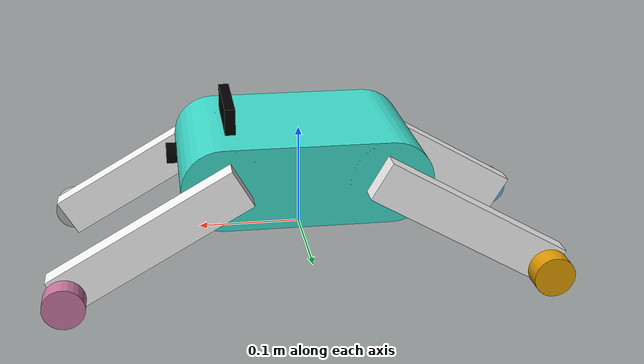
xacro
<?xml version="1.0"?>
<robot name="hitomi_display" xmlns:xacro="https://ros.org/wiki/xacro">
    <xacro:include filename="$(find hitomi_display)/urdf/chassis.urdf.xacro"/>
    <xacro:include filename="$(find hitomi_display)/urdf/legs.urdf.xacro"/>
    <xacro:include filename="$(find hitomi_display)/urdf/wheels.urdf.xacro"/>
    <xacro:include filename="$(find hitomi_display)/urdf/display.urdf.xacro"/>
    <xacro:include filename="$(find hitomi_display)/urdf/camera.urdf.xacro"/>

    <xacro:chassis/>
    <xacro:leg suffix="fl" parent="chassis_link" xyz="0.15 0.09 0.03" rpy="0 0.523 0"/>
    <xacro:leg suffix="fr" parent="chassis_link" xyz="0.15 -0.09 0.03" rpy="0 0.523 0"/>
    <xacro:leg suffix="rl" parent="chassis_link" xyz="-0.15 0.09 0.03" rpy="0 -0.523 0"/>
    <xacro:leg suffix="rr" parent="chassis_link" xyz="-0.15 -0.09 0.03" rpy="0 -0.523 0"/>
    <xacro:wheel suffix="fl" parent="leg_fl" xyz="0.08 0.02 -0.05"/>
    <xacro:wheel suffix="fr" parent="leg_fr" xyz="0.08 -0.02 -0.05"/>
    <xacro:wheel suffix="rl" parent="leg_rl" xyz="-0.08 0.02 -0.05" />
    <xacro:wheel suffix="rr" parent="leg_rr" xyz="-0.08 -0.02 -0.05" />
    <xacro:display xyz="0.07 0 0.12" />
    <xacro:camera/>
    <xacro:include filename="$(find hitomi_display)/urdf/gazebo_plugins.urdf.xacro"/>
</robot>

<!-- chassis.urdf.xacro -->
<robot  xmlns:xacro="http://ros.org/wiki/xacro">
    <xacro:macro name="chassis">
        <link name="base_footprint"/>
        <link name="chassis_link">
            <visual>
                <origin xyz="0 0 0.07" rpy="0 0 0"/>
                <geometry>
                    <mesh filename="package://hitomi_display/meshes/body.dae"/>
                </geometry>
                <material name="true_turquoise">
                    <color rgba="0.251 0.878 0.816 1.0"/>
                </material>
            </visual>
            <collision>
                <origin xyz="0 0 0.07" rpy="0 0 0"/>
                <geometry>
                    <mesh filename="package://hitomi_display/meshes/body.stl"/>
                </geometry>
            </collision>
            <inertial>
                <mass value="3.0" />
                <inertia
                  ixx="0.9" ixy="0.0" ixz="0.0"
                  iyy="0.9" iyz="0.0"
                  izz="0.01"/>
              </inertial>
        </link>

        <joint name="base_joint" type="fixed">
            <parent link="base_footprint"/>
            <child link="chassis_link"/>
        </joint>
    </xacro:macro>
</robot>

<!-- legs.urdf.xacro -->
<robot xmlns:xacro="https://ros.org/wiki/xacro">
    <xacro:macro name="leg" params="suffix parent xyz rpy">
        <link name="leg_${suffix}">
            <visual>
                <origin xyz="0 0 0" rpy="${rpy}"/>
                <geometry>
                    <mesh filename="package://hitomi_display/meshes/leg.dae"/>
                </geometry>
                <material name="white">
                    <color rgba="1 1 1 1"/>
                </material>
            </visual>
            <collision>
                <origin xyz="0 0 0" rpy="${rpy}"/>
                <geometry>
                    <mesh filename="package://hitomi_display/meshes/leg.stl"/>
                </geometry>
            </collision>
            <inertial>
                <mass value="0.5" />
                <inertia ixx="0.005" ixy="0" ixz="0" iyy="0.005" iyz="0" izz="0.005" />
            </inertial>
        </link>

        <joint name="leg_${suffix}_joint" type="fixed">
            <!-- need to change the type from fixed to something so that the suspension will be simulated.-->
             <parent link="${parent}"/>
             <child link="leg_${suffix}"/>
             <origin xyz="${xyz}" rpy="0 0 0"/>
        </joint>
    </xacro:macro>
</robot>

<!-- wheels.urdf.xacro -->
<robot xmlns:xacro="https://ros.org/wiki/xacro">
    <xacro:macro name="wheel" params="suffix parent xyz">
        <link name="wheel_${suffix}">
            <visual>
                <origin xyz="0 0 0" rpy="1.570795 0 0"/>
                <geometry>
                    <cylinder radius="0.02" length="0.02"/>
                </geometry>
            </visual>
            <collision>
                <origin xyz="0 0 0" rpy="1.570795 0 0"/>
                <geometry>
                    <cylinder radius="0.02" length="0.02"/>
                </geometry>
            </collision>
            <inertial>
                <mass value="0.05" />
                <inertia ixx="0.005" ixy="0" ixz="0" iyy="0.005" iyz="0" izz="0.005" />
              </inertial>
        </link>

        <joint name="wheel_${suffix}_joint" type="continuous">
            <parent link="${parent}"/>
            <child link="wheel_${suffix}"/>
            <origin xyz="${xyz}"/>
            <axis xyz="0 1 0 "/>
        </joint>
    </xacro:macro>
</robot>

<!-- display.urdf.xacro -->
<robot xmlns:xacro="http://ros.org/wiki/xacro">
<xacro:macro name="display" params="xyz">
    <link name="display_link">
        <visual>
            <origin xyz="${xyz}" rpy="0 0 0"/>
            <geometry>
                <box size="0.01 0.08 0.03" />
              </geometry>
              <material name="black">
                <color rgba="0 0 0 1" />
              </material>
        </visual>
        <collision>
            <origin xyz="${xyz}" rpy="0 0 0"/>
            <geometry>
                <box size="0.01 0.08 0.03" />
              </geometry>
        </collision>
    </link>

    <joint name="display_joint" type="fixed">
        <parent link="chassis_link" />
        <child link="display_link" />
      </joint>
</xacro:macro>
</robot>

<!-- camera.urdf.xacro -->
<robot xmlns:xacro="http://ros.org/wiki/xacro">
<xacro:macro name="camera">
    <link name="camera_link">
        <visual>
            <origin xyz="0 0 0" rpy="0 1.570795 0"/>
            <geometry>
                <cylinder radius="0.01" length="0.01"/>
            </geometry>
            <material name="black">
                <color rgba="0 0 0 1"/>
            </material>
        </visual>
        <collision>
            <geometry>
                <cylinder radius="0.01" length="0.01"/>
            </geometry>
        </collision>
        <inertial>
            <mass value="0.01"/>
            <inertia ixx="0.005" ixy="0" ixz="0" iyy="0.005" iyz="0" izz="0.005" />
            <origin xyz="0 0 0" rpy="0 0 0"/>
        </inertial>
    </link>

    <joint name="camera_joint" type="fixed">
        <parent link="chassis_link"/>
        <child link="camera_link"/>
        <origin xyz="0.125 0 0.08"/>
    </joint>

    <gazebo reference="camera_link">
        <sensor type="depth" name="depth_camera">
          <gz_frame_id>camera_link</gz_frame_id>
          <pose>-0.005 0 0 0 0 0</pose>
          <topic>depth</topic>
          <update_rate>10.0</update_rate>
          <camera name="camera1">
            <camera_info_topic>depth/camera_info</camera_info_topic>
            <pose>0 0 0 0 0 0</pose>
            <horizontal_fov>1.5</horizontal_fov>
            <image>
              <width>320</width>
              <height>240</height>
            </image>
            <clip>
              <near>0.05</near>
              <far>300</far>
            </clip>
            <noise>
              <type>gaussian</type>
              <mean>0.0</mean>
              <stddev>0.007</stddev>
            </noise>
          </camera>
        </sensor>
        <sensor name="camera_fr" type="camera">
          <gz_frame_id>camera_link</gz_frame_id>
          <pose>-0.005 0 0 0 0 0</pose>
          <always_on>1</always_on>
          <update_rate>30</update_rate>
          <visualize>true</visualize>
          <topic>camera</topic>
          <camera>
            <camera_info_topic>/camera_info</camera_info_topic>
            <horizontal_fov>1.5</horizontal_fov>
            <image>
              <width>640</width>
              <height>480</height>
            </image>
            <clip>
              <near>0.01</near>
              <far>300</far>
            </clip>
          </camera>
        </sensor>
      </gazebo>

</xacro:macro>
</robot>
